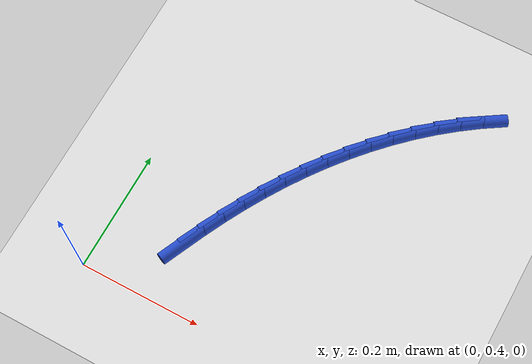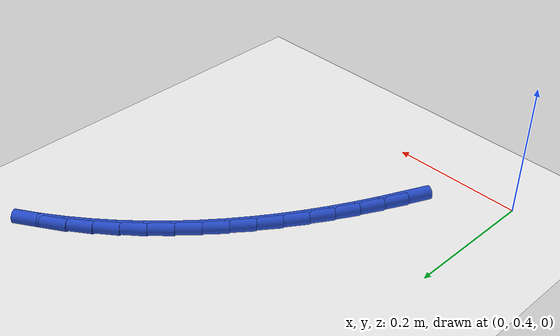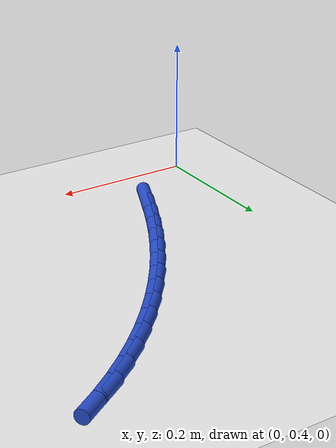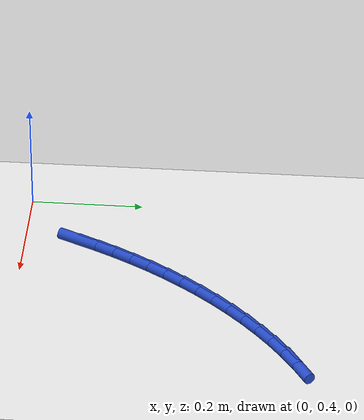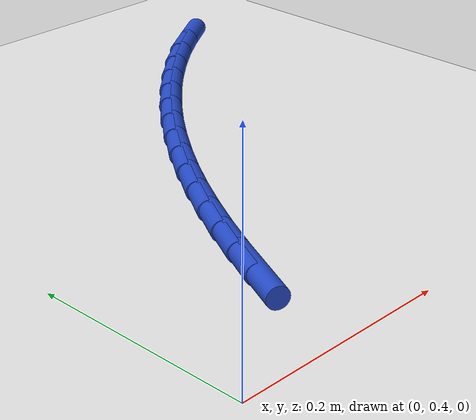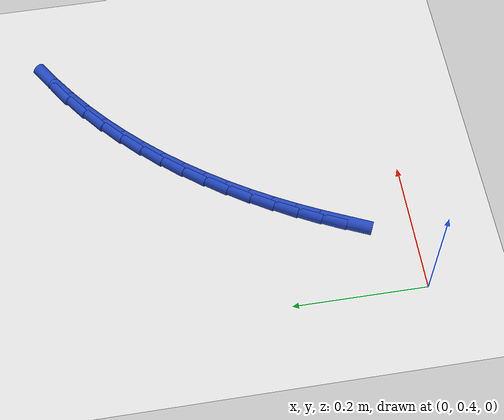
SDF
<sdf version="1.6">
 <world name="default">
  <model name="ground_plane">
   <static>1</static>
   <link name="link">
    <collision name="collision">
     <geometry><plane><normal>0 0 1</normal><size>100 100</size></plane></geometry>
     <surface><friction><ode><mu>100</mu><mu2>50</mu2></ode></friction></surface>
    </collision>
    <visual name="visual">
     <cast_shadows>0</cast_shadows>
     <geometry><plane><normal>0 0 1</normal><size>100 100</size></plane></geometry>
     <material>
      <script><uri>file://media/materials/scripts/gazebo.material</uri><name>Gazebo/WhiteGlow</name></script>
     </material>
    </visual>
   </link>
  </model>
  <model name="line">
   <link name="link_14">
    <pose>0.11784333626966334 0.49794458819118476 0.01 0 1.57 1.145462905295455</pose>
    <collision name="collision">
     <geometry><cylinder><radius>0.01</radius><length>0.08</length></cylinder></geometry>
    </collision>
    <visual name="visual">
     <material>
      <script><name>Gazebo/Blue</name><uri>file://media/materials/scripts/gazebo.material</uri></script>
     </material>
     <geometry><cylinder><radius>0.01</radius><length>0.08</length></cylinder></geometry>
    </visual>
   </link>
   <link name="link_15">
    <pose>0.13303634506048592 0.5314843547294715 0.01 0 1.57 1.1154571440789598</pose>
    <collision name="collision">
     <geometry><cylinder><radius>0.01</radius><length>0.08</length></cylinder></geometry>
    </collision>
    <visual name="visual">
     <material>
      <script><name>Gazebo/Blue</name><uri>file://media/materials/scripts/gazebo.material</uri></script>
     </material>
     <geometry><cylinder><radius>0.01</radius><length>0.08</length></cylinder></geometry>
    </visual>
   </link>
   <link name="link_16">
    <pose>0.14921106292196867 0.5645170927642124 0.01 0 1.57 1.083567963429848</pose>
    <collision name="collision">
     <geometry><cylinder><radius>0.01</radius><length>0.08</length></cylinder></geometry>
    </collision>
    <visual name="visual">
     <material>
      <script><name>Gazebo/Blue</name><uri>file://media/materials/scripts/gazebo.material</uri></script>
     </material>
     <geometry><cylinder><radius>0.01</radius><length>0.08</length></cylinder></geometry>
    </visual>
   </link>
   <link name="link_17">
    <pose>0.16641312570271327 0.5969840318075238 0.01 0 1.57 1.0497724016939556</pose>
    <collision name="collision">
     <geometry><cylinder><radius>0.01</radius><length>0.08</length></cylinder></geometry>
    </collision>
    <visual name="visual">
     <material>
      <script><name>Gazebo/Blue</name><uri>file://media/materials/scripts/gazebo.material</uri></script>
     </material>
     <geometry><cylinder><radius>0.01</radius><length>0.08</length></cylinder></geometry>
    </visual>
   </link>
   <link name="link_18">
    <pose>0.18468816925132148 0.6288264013715232 0.01 0 1.57 1.0140623791485874</pose>
    <collision name="collision">
     <geometry><cylinder><radius>0.01</radius><length>0.08</length></cylinder></geometry>
    </collision>
    <visual name="visual">
     <material>
      <script><name>Gazebo/Blue</name><uri>file://media/materials/scripts/gazebo.material</uri></script>
     </material>
     <geometry><cylinder><radius>0.01</radius><length>0.08</length></cylinder></geometry>
    </visual>
   </link>
   <link name="link_19">
    <pose>0.20408182941639488 0.6599854309683281 0.01 0 1.57 0.9764485542619475</pose>
    <collision name="collision">
     <geometry><cylinder><radius>0.01</radius><length>0.08</length></cylinder></geometry>
    </collision>
    <visual name="visual">
     <material>
      <script><name>Gazebo/Blue</name><uri>file://media/materials/scripts/gazebo.material</uri></script>
     </material>
     <geometry><cylinder><radius>0.01</radius><length>0.08</length></cylinder></geometry>
    </visual>
   </link>
   <link name="link_20">
    <pose>0.22463974204653522 0.690402350110055 0.01 0 1.57 0.936964255825091</pose>
    <collision name="collision">
     <geometry><cylinder><radius>0.01</radius><length>0.08</length></cylinder></geometry>
    </collision>
    <visual name="visual">
     <material>
      <script><name>Gazebo/Blue</name><uri>file://media/materials/scripts/gazebo.material</uri></script>
     </material>
     <geometry><cylinder><radius>0.01</radius><length>0.08</length></cylinder></geometry>
    </visual>
   </link>
   <link name="link_21">
    <pose>0.24640754299034406 0.7200183883088213 0.01 0 1.57 0.8956928046189583</pose>
    <collision name="collision">
     <geometry><cylinder><radius>0.01</radius><length>0.08</length></cylinder></geometry>
    </collision>
    <visual name="visual">
     <material>
      <script><name>Gazebo/Blue</name><uri>file://media/materials/scripts/gazebo.material</uri></script>
     </material>
     <geometry><cylinder><radius>0.01</radius><length>0.08</length></cylinder></geometry>
    </visual>
   </link>
   <link name="link_22">
    <pose>0.2694284776731253 0.7487731773444105 0.01 0 1.57 0.8530732530980307</pose>
    <collision name="collision">
     <geometry><cylinder><radius>0.01</radius><length>0.08</length></cylinder></geometry>
    </collision>
    <visual name="visual">
     <material>
      <script><name>Gazebo/Blue</name><uri>file://media/materials/scripts/gazebo.material</uri></script>
     </material>
     <geometry><cylinder><radius>0.01</radius><length>0.08</length></cylinder></geometry>
    </visual>
   </link>
   <link name="link_23">
    <pose>0.2937034502795244 0.7765780485824891 0.01 0 1.57 0.8092933073116575</pose>
    <collision name="collision">
     <geometry><cylinder><radius>0.01</radius><length>0.08</length></cylinder></geometry>
    </collision>
    <visual name="visual">
     <material>
      <script><name>Gazebo/Blue</name><uri>file://media/materials/scripts/gazebo.material</uri></script>
     </material>
     <geometry><cylinder><radius>0.01</radius><length>0.08</length></cylinder></geometry>
    </visual>
   </link>
   <link name="link_24">
    <pose>0.3191970431813142 0.8033200562931603 0.01 0 1.57 0.7641497401112144</pose>
    <collision name="collision">
     <geometry><cylinder><radius>0.01</radius><length>0.08</length></cylinder></geometry>
    </collision>
    <visual name="visual">
     <material>
      <script><name>Gazebo/Blue</name><uri>file://media/materials/scripts/gazebo.material</uri></script>
     </material>
     <geometry><cylinder><radius>0.01</radius><length>0.08</length></cylinder></geometry>
    </visual>
   </link>
   <link name="link_25">
    <pose>0.345872661093509 0.828885467613853 0.01 0 1.57 0.7174371716382381</pose>
    <collision name="collision">
     <geometry><cylinder><radius>0.01</radius><length>0.08</length></cylinder></geometry>
    </collision>
    <visual name="visual">
     <material>
      <script><name>Gazebo/Blue</name><uri>file://media/materials/scripts/gazebo.material</uri></script>
     </material>
     <geometry><cylinder><radius>0.01</radius><length>0.08</length></cylinder></geometry>
    </visual>
   </link>
   <link name="link_26">
    <pose>0.37369370873112273 0.8531605496819961 0.01 0 1.57 0.668962798000274</pose>
    <collision name="collision">
     <geometry><cylinder><radius>0.01</radius><length>0.08</length></cylinder></geometry>
    </collision>
    <visual name="visual">
     <material>
      <script><name>Gazebo/Blue</name><uri>file://media/materials/scripts/gazebo.material</uri></script>
     </material>
     <geometry><cylinder><radius>0.01</radius><length>0.08</length></cylinder></geometry>
    </visual>
   </link>
   <link name="link_27">
    <pose>0.40262359080916943 0.876031569635019 0.01 0 1.57 0.618551054360377</pose>
    <collision name="collision">
     <geometry><cylinder><radius>0.01</radius><length>0.08</length></cylinder></geometry>
    </collision>
    <visual name="visual">
     <material>
      <script><name>Gazebo/Blue</name><uri>file://media/materials/scripts/gazebo.material</uri></script>
     </material>
     <geometry><cylinder><radius>0.01</radius><length>0.08</length></cylinder></geometry>
    </visual>
   </link>
   <link name="link_28">
    <pose>0.43262571204266376 0.897384794610351 0.01 0 1.57 0.5660499486880994</pose>
    <collision name="collision">
     <geometry><cylinder><radius>0.01</radius><length>0.08</length></cylinder></geometry>
    </collision>
    <visual name="visual">
     <material>
      <script><name>Gazebo/Blue</name><uri>file://media/materials/scripts/gazebo.material</uri></script>
     </material>
     <geometry><cylinder><radius>0.01</radius><length>0.08</length></cylinder></geometry>
    </visual>
   </link>
  </model>
 </world>
</sdf>
